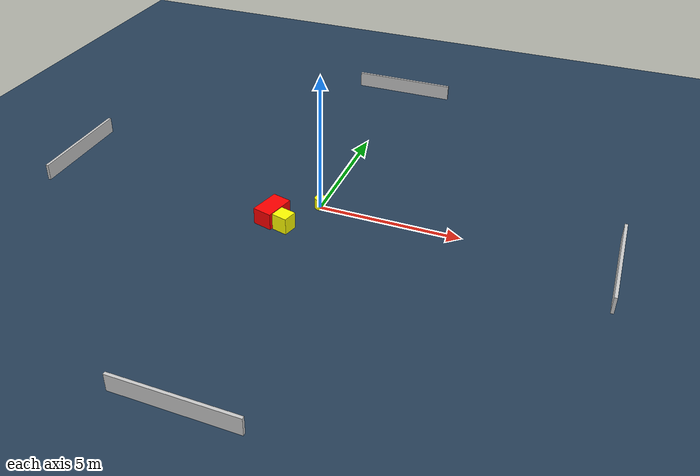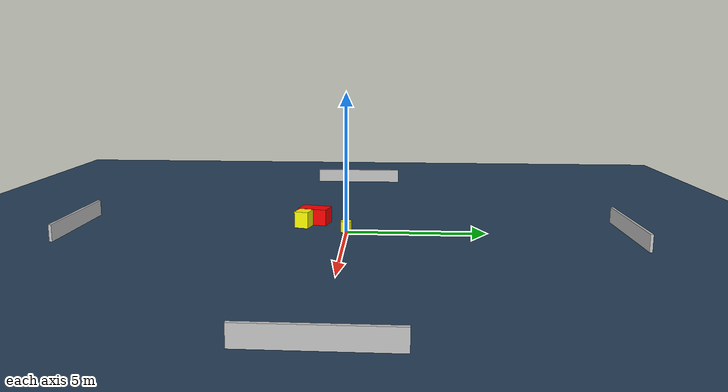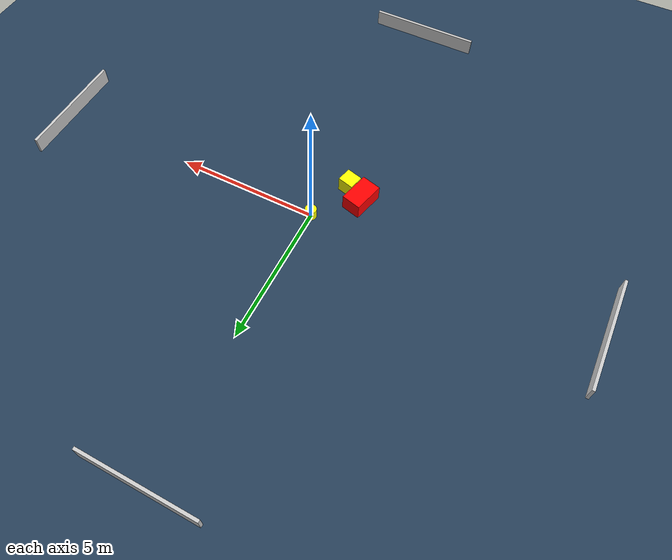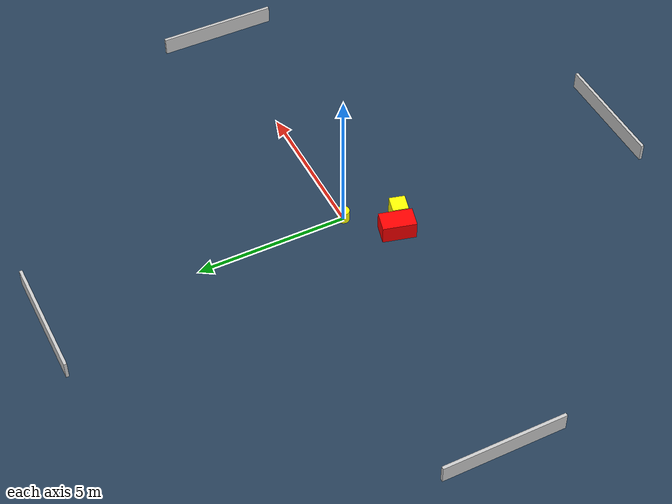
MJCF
<?xml version="1.0" ?>
<mujoco model="generated_environment">
  <option timestep="0.01" integrator="RK4" cone="elliptic"/>
  <default>
    <geom density="1"/>
  </default>
  <asset>
    <texture builtin="gradient" height="3072" name="skybox" rgb1="0.3 0.5 0.7" rgb2="0 0 0" type="skybox" width="512"/>
    <texture builtin="checker" height="300" name="groundplane" rgb1="0.2 0.3 0.4" rgb2="0.1 0.2 0.3" type="2d" width="300"/>
    <material name="groundplane" reflectance="0.2" texrepeat="5 5" texture="groundplane"/>
  </asset>
  <worldbody>
    <light dir="0 0 -1" directional="true" pos="0 0 1.5"/>
    <geom condim="3" friction="0.5 0.005 0.001" material="groundplane" name="floor" pos="0 0 0" size="0 0 0.05" type="plane"/>
    <body name="walls">
      <geom name="wall_1" condim="4" pos="-10.0 0.0 0.3" rgba="0.800000011920929 0.800000011920929 0.800000011920929 1.0" size="0.05 2.0 0.3" type="box"/>
      <geom name="wall_2" condim="4" pos="10.0 0.0 0.3" rgba="0.800000011920929 0.800000011920929 0.800000011920929 1.0" size="0.05 2.0 0.3" type="box"/>
      <geom name="wall_3" condim="4" pos="0.0 -10.0 0.3" rgba="0.800000011920929 0.800000011920929 0.800000011920929 1.0" size="2.0 0.05 0.3" type="box"/>
      <geom name="wall_4" condim="4" pos="0.0 10.0 0.3" rgba="0.800000011920929 0.800000011920929 0.800000011920929 1.0" size="2.0 0.05 0.3" type="box"/>
    </body>
    <body name="robot">
      <joint name="joint_x" type="slide" pos="0 0 0" axis="1 0 0"/>
      <joint name="joint_y" type="slide" pos="0 0 0" axis="0 1 0"/>
      <geom name="robot" type="cylinder" pos="0.0 0.0 0.2" size="0.2 0.2 0.0" mass="5.0" friction="1.0 0.005 0.0001" condim="4" rgba="1.0 1.0 0.0 1.0"/>
    </body>
    <body name="obstacle_1_movable">
      <geom name="obstacle_1_movable" condim="4" pos="-0.6743017305074638 -1.6248054041822082 0.3" euler="0 0 165.30875898134036" friction="0.0 0.005 0.001" rgba="1.0 1.0 0.0 1.0" size="0.2830427996276417 0.2621371323864084 0.3" type="box" mass="0.1"/>
      <joint type="free"/>
    </body>
    <body name="obstacle_2_static">
      <geom name="obstacle_2_static" condim="4" pos="-1.2599241282653264 -1.271916546448951 0.3" euler="0 0 255.38382260410387" friction="0.0 0.005 0.001" rgba="1.0 0.0 0.0 1.0" size="0.552826051703238 0.3456864867551729 0.3" type="box"/>
    </body>
  </worldbody>
  <actuator>
    <motor name="actuator_x" joint="joint_x" gear="1" ctrlrange="-1 1"/>
    <motor name="actuator_y" joint="joint_y" gear="1" ctrlrange="-1 1"/>
  </actuator>
</mujoco>
